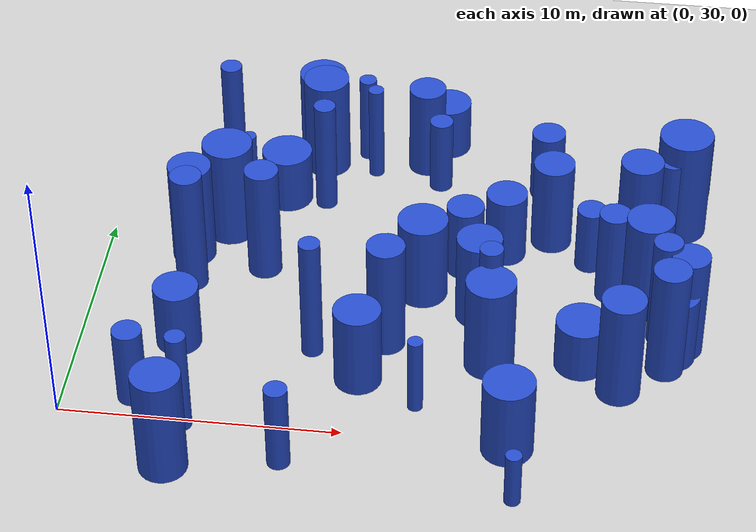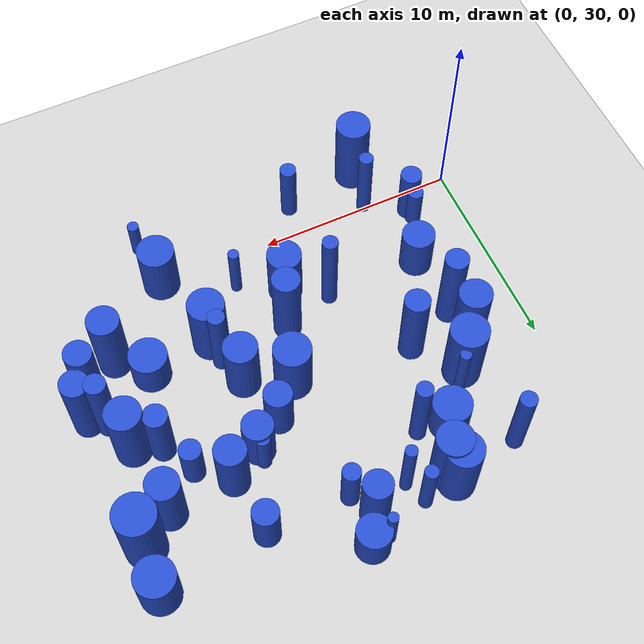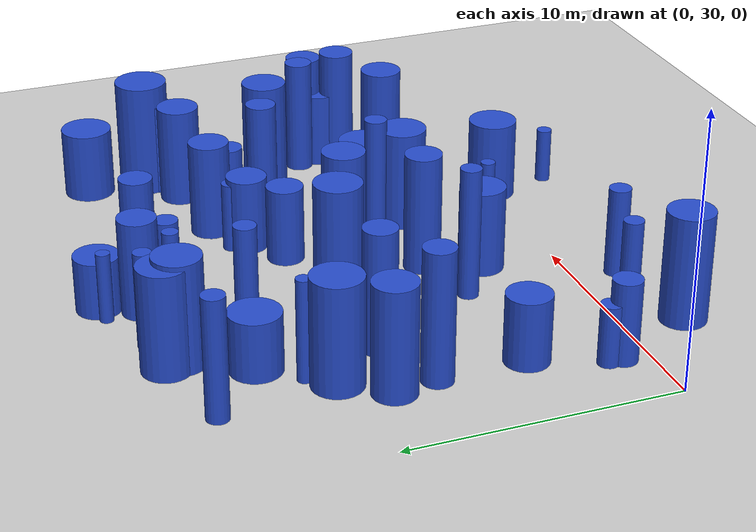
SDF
<sdf version="1.6">
 <world name="default">
  <model name="ground_plane">
   <static>1</static>
   <link name="link">
    <collision name="collision">
     <geometry><plane><normal>0 0 1</normal><size>100 100</size></plane></geometry>
     <surface><friction><ode><mu>100</mu><mu2>50</mu2></ode></friction></surface>
    </collision>
    <visual name="visual">
     <cast_shadows>0</cast_shadows>
     <geometry><plane><normal>0 0 1</normal><size>100 100</size></plane></geometry>
     <material>
      <script><uri>file://media/materials/scripts/gazebo.material</uri><name>Gazebo/Grey</name></script>
     </material>
    </visual>
   </link>
  </model>
  <model name="3">
   <static>0</static>
   <link name="link">
    <inertial>
     <mass>2</mass>
     <inertia><ixx>1.27106</ixx><ixy>0</ixy><ixz>0</ixz><iyy>1.27106</iyy><iyz>0</iyz><izz>0.895913</izz></inertia>
    </inertial>
    <collision name="collision">
     <geometry><cylinder><length>2.2223</length><radius>0.946527</radius></cylinder></geometry>
     <surface><contact><collide_without_contact>1</collide_without_contact></contact></surface>
    </collision>
    <visual name="visual">
     <geometry><cylinder><length>2.2223</length><radius>0.946527</radius></cylinder></geometry>
     <material>
      <script><uri>file://media/materials/scripts/gazebo.material</uri><name>Gazebo/Blue</name></script>
     </material>
    </visual>
    <gravity>0</gravity>
   </link>
   <pose>6.2225 42.677 1.11115 0 -0 0</pose>
  </model>
  <model name="13">
   <static>0</static>
   <link name="link">
    <inertial>
     <mass>2</mass>
     <inertia><ixx>1.65318</ixx><ixy>0</ixy><ixz>0</ixz><iyy>1.65318</iyy><iyz>0</iyz><izz>0.578017</izz></inertia>
    </inertial>
    <collision name="collision">
     <geometry><cylinder><length>2.86095</length><radius>0.760275</radius></cylinder></geometry>
     <surface><contact><collide_without_contact>1</collide_without_contact></contact></surface>
    </collision>
    <visual name="visual">
     <geometry><cylinder><length>2.86095</length><radius>0.760275</radius></cylinder></geometry>
     <material>
      <script><uri>file://media/materials/scripts/gazebo.material</uri><name>Gazebo/Blue</name></script>
     </material>
    </visual>
    <gravity>0</gravity>
   </link>
   <pose>14.8082 40.254 1.43047 0 -0 0</pose>
  </model>
  <model name="15">
   <static>0</static>
   <link name="link">
    <inertial>
     <mass>2</mass>
     <inertia><ixx>2.02878</ixx><ixy>0</ixy><ixz>0</ixz><iyy>2.02878</iyy><iyz>0</iyz><izz>0.837732</izz></inertia>
    </inertial>
    <collision name="collision">
     <geometry><cylinder><length>3.10797</length><radius>0.915277</radius></cylinder></geometry>
     <surface><contact><collide_without_contact>1</collide_without_contact></contact></surface>
    </collision>
    <visual name="visual">
     <geometry><cylinder><length>3.10797</length><radius>0.915277</radius></cylinder></geometry>
     <material>
      <script><uri>file://media/materials/scripts/gazebo.material</uri><name>Gazebo/Blue</name></script>
     </material>
    </visual>
    <gravity>0</gravity>
   </link>
   <pose>15.7285 29.9287 1.55399 0 -0 0</pose>
  </model>
  <model name="21">
   <static>0</static>
   <link name="link">
    <inertial>
     <mass>2</mass>
     <inertia>
      <ixx>0.942504</ixx>
      <ixy>0</ixy>
      <ixz>0</ixz>
      <iyy>0.942504</iyy>
      <iyz>0</iyz>
      <izz>0.157121</izz>
     </inertia>
    </inertial>
    <collision name="collision">
     <geometry><cylinder><length>2.27677</length><radius>0.396385</radius></cylinder></geometry>
     <surface><contact><collide_without_contact>1</collide_without_contact></contact></surface>
    </collision>
    <visual name="visual">
     <geometry><cylinder><length>2.27677</length><radius>0.396385</radius></cylinder></geometry>
     <material>
      <script><uri>file://media/materials/scripts/gazebo.material</uri><name>Gazebo/Blue</name></script>
     </material>
    </visual>
    <gravity>0</gravity>
   </link>
   <pose>2.46046 31.5423 1.13838 0 -0 0</pose>
  </model>
  <model name="29">
   <static>0</static>
   <link name="link">
    <inertial>
     <mass>2</mass>
     <inertia><ixx>1.13627</ixx><ixy>0</ixy><ixz>0</ixz><iyy>1.13627</iyy><iyz>0</iyz><izz>0.890575</izz></inertia>
    </inertial>
    <collision name="collision">
     <geometry><cylinder><length>2.03615</length><radius>0.943703</radius></cylinder></geometry>
     <surface><contact><collide_without_contact>1</collide_without_contact></contact></surface>
    </collision>
    <visual name="visual">
     <geometry><cylinder><length>2.03615</length><radius>0.943703</radius></cylinder></geometry>
     <material>
      <script><uri>file://media/materials/scripts/gazebo.material</uri><name>Gazebo/Blue</name></script>
     </material>
    </visual>
    <gravity>0</gravity>
   </link>
   <pose>17.9595 34.4953 1.01807 0 -0 0</pose>
  </model>
  <model name="33">
   <static>0</static>
   <link name="link">
    <inertial>
     <mass>2</mass>
     <inertia><ixx>3.34107</ixx><ixy>0</ixy><ixz>0</ixz><iyy>3.34107</iyy><iyz>0</iyz><izz>0.741521</izz></inertia>
    </inertial>
    <collision name="collision">
     <geometry><cylinder><length>4.22159</length><radius>0.861116</radius></cylinder></geometry>
     <surface><contact><collide_without_contact>1</collide_without_contact></contact></surface>
    </collision>
    <visual name="visual">
     <geometry><cylinder><length>4.22159</length><radius>0.861116</radius></cylinder></geometry>
     <material>
      <script><uri>file://media/materials/scripts/gazebo.material</uri><name>Gazebo/Blue</name></script>
     </material>
    </visual>
    <gravity>0</gravity>
   </link>
   <pose>4.2013 27.7585 2.1108 0 -0 0</pose>
  </model>
  <model name="34">
   <static>0</static>
   <link name="link">
    <inertial>
     <mass>2</mass>
     <inertia><ixx>1.44194</ixx><ixy>0</ixy><ixz>0</ixz><iyy>1.44194</iyy><iyz>0</iyz><izz>0.671354</izz></inertia>
    </inertial>
    <collision name="collision">
     <geometry><cylinder><length>2.57635</length><radius>0.819362</radius></cylinder></geometry>
     <surface><contact><collide_without_contact>1</collide_without_contact></contact></surface>
    </collision>
    <visual name="visual">
     <geometry><cylinder><length>2.57635</length><radius>0.819362</radius></cylinder></geometry>
     <material>
      <script><uri>file://media/materials/scripts/gazebo.material</uri><name>Gazebo/Blue</name></script>
     </material>
    </visual>
    <gravity>0</gravity>
   </link>
   <pose>3.57515 34.0262 1.28817 0 -0 0</pose>
  </model>
  <model name="49">
   <static>0</static>
   <link name="link">
    <inertial>
     <mass>2</mass>
     <inertia><ixx>2.53938</ixx><ixy>0</ixy><ixz>0</ixz><iyy>2.53938</iyy><iyz>0</iyz><izz>0.580052</izz></inertia>
    </inertial>
    <collision name="collision">
     <geometry><cylinder><length>3.67371</length><radius>0.761611</radius></cylinder></geometry>
     <surface><contact><collide_without_contact>1</collide_without_contact></contact></surface>
    </collision>
    <visual name="visual">
     <geometry><cylinder><length>3.67371</length><radius>0.761611</radius></cylinder></geometry>
     <material>
      <script><uri>file://media/materials/scripts/gazebo.material</uri><name>Gazebo/Blue</name></script>
     </material>
    </visual>
    <gravity>0</gravity>
   </link>
   <pose>16.4595 41.1875 1.83685 0 -0 0</pose>
  </model>
  <model name="52">
   <static>0</static>
   <link name="link">
    <inertial>
     <mass>2</mass>
     <inertia><ixx>3.32112</ixx><ixy>0</ixy><ixz>0</ixz><iyy>3.32112</iyy><iyz>0</iyz><izz>0.180098</izz></inertia>
    </inertial>
    <collision name="collision">
     <geometry><cylinder><length>4.40301</length><radius>0.42438</radius></cylinder></geometry>
     <surface><contact><collide_without_contact>1</collide_without_contact></contact></surface>
    </collision>
    <visual name="visual">
     <geometry><cylinder><length>4.40301</length><radius>0.42438</radius></cylinder></geometry>
     <material>
      <script><uri>file://media/materials/scripts/gazebo.material</uri><name>Gazebo/Blue</name></script>
     </material>
    </visual>
    <gravity>0</gravity>
   </link>
   <pose>14.6406 35.2188 2.2015 0 -0 0</pose>
  </model>
  <model name="63">
   <static>0</static>
   <link name="link">
    <inertial>
     <mass>2</mass>
     <inertia><ixx>3.63749</ixx><ixy>0</ixy><ixz>0</ixz><iyy>3.63749</iyy><iyz>0</iyz><izz>0.165125</izz></inertia>
    </inertial>
    <collision name="collision">
     <geometry><cylinder><length>4.61839</length><radius>0.406356</radius></cylinder></geometry>
     <surface><contact><collide_without_contact>1</collide_without_contact></contact></surface>
    </collision>
    <visual name="visual">
     <geometry><cylinder><length>4.61839</length><radius>0.406356</radius></cylinder></geometry>
     <material>
      <script><uri>file://media/materials/scripts/gazebo.material</uri><name>Gazebo/Blue</name></script>
     </material>
    </visual>
    <gravity>0</gravity>
   </link>
   <pose>7.74254 42.4668 2.3092 0 -0 0</pose>
  </model>
  <model name="65">
   <static>0</static>
   <link name="link">
    <inertial>
     <mass>2</mass>
     <inertia><ixx>2.6533</ixx><ixy>0</ixy><ixz>0</ixz><iyy>2.6533</iyy><iyz>0</iyz><izz>0.0866099</izz></inertia>
    </inertial>
    <collision name="collision">
     <geometry><cylinder><length>3.95727</length><radius>0.294296</radius></cylinder></geometry>
     <surface><contact><collide_without_contact>1</collide_without_contact></contact></surface>
    </collision>
    <visual name="visual">
     <geometry><cylinder><length>3.95727</length><radius>0.294296</radius></cylinder></geometry>
     <material>
      <script><uri>file://media/materials/scripts/gazebo.material</uri><name>Gazebo/Blue</name></script>
     </material>
    </visual>
    <gravity>0</gravity>
   </link>
   <pose>9.41371 44.5715 1.97863 0 -0 0</pose>
  </model>
  <model name="73">
   <static>0</static>
   <link name="link">
    <inertial>
     <mass>2</mass>
     <inertia><ixx>3.46252</ixx><ixy>0</ixy><ixz>0</ixz><iyy>3.46252</iyy><iyz>0</iyz><izz>0.167868</izz></inertia>
    </inertial>
    <collision name="collision">
     <geometry><cylinder><length>4.50239</length><radius>0.409717</radius></cylinder></geometry>
     <surface><contact><collide_without_contact>1</collide_without_contact></contact></surface>
    </collision>
    <visual name="visual">
     <geometry><cylinder><length>4.50239</length><radius>0.409717</radius></cylinder></geometry>
     <material>
      <script><uri>file://media/materials/scripts/gazebo.material</uri><name>Gazebo/Blue</name></script>
     </material>
    </visual>
    <gravity>0</gravity>
   </link>
   <pose>3.82424 44.7196 2.25119 0 -0 0</pose>
  </model>
  <model name="81">
   <static>0</static>
   <link name="link">
    <inertial>
     <mass>2</mass>
     <inertia><ixx>3.20515</ixx><ixy>0</ixy><ixz>0</ixz><iyy>3.20515</iyy><iyz>0</iyz><izz>0.736814</izz></inertia>
    </inertial>
    <collision name="collision">
     <geometry><cylinder><length>4.12559</length><radius>0.858379</radius></cylinder></geometry>
     <surface><contact><collide_without_contact>1</collide_without_contact></contact></surface>
    </collision>
    <visual name="visual">
     <geometry><cylinder><length>4.12559</length><radius>0.858379</radius></cylinder></geometry>
     <material>
      <script><uri>file://media/materials/scripts/gazebo.material</uri><name>Gazebo/Blue</name></script>
     </material>
    </visual>
    <gravity>0</gravity>
   </link>
   <pose>20.1003 37.8413 2.06279 0 -0 0</pose>
  </model>
  <model name="99">
   <static>0</static>
   <link name="link">
    <inertial>
     <mass>2</mass>
     <inertia><ixx>2.01084</ixx><ixy>0</ixy><ixz>0</ixz><iyy>2.01084</iyy><iyz>0</iyz><izz>0.169037</izz></inertia>
    </inertial>
    <collision name="collision">
     <geometry><cylinder><length>3.39969</length><radius>0.411142</radius></cylinder></geometry>
     <surface><contact><collide_without_contact>1</collide_without_contact></contact></surface>
    </collision>
    <visual name="visual">
     <geometry><cylinder><length>3.39969</length><radius>0.411142</radius></cylinder></geometry>
     <material>
      <script><uri>file://media/materials/scripts/gazebo.material</uri><name>Gazebo/Blue</name></script>
     </material>
    </visual>
    <gravity>0</gravity>
   </link>
   <pose>8.06943 28.385 1.69985 0 -0 0</pose>
  </model>
  <model name="101">
   <static>0</static>
   <link name="link">
    <inertial>
     <mass>2</mass>
     <inertia><ixx>2.85249</ixx><ixy>0</ixy><ixz>0</ixz><iyy>2.85249</iyy><iyz>0</iyz><izz>0.131371</izz></inertia>
    </inertial>
    <collision name="collision">
     <geometry><cylinder><length>4.08911</length><radius>0.362452</radius></cylinder></geometry>
     <surface><contact><collide_without_contact>1</collide_without_contact></contact></surface>
    </collision>
    <visual name="visual">
     <geometry><cylinder><length>4.08911</length><radius>0.362452</radius></cylinder></geometry>
     <material>
      <script><uri>file://media/materials/scripts/gazebo.material</uri><name>Gazebo/Blue</name></script>
     </material>
    </visual>
    <gravity>0</gravity>
   </link>
   <pose>4.46368 29.8106 2.04456 0 -0 0</pose>
  </model>
  <model name="103">
   <static>0</static>
   <link name="link">
    <inertial>
     <mass>2</mass>
     <inertia><ixx>1.67193</ixx><ixy>0</ixy><ixz>0</ixz><iyy>1.67193</iyy><iyz>0</iyz><izz>0.920377</izz></inertia>
    </inertial>
    <collision name="collision">
     <geometry><cylinder><length>2.69637</length><radius>0.959363</radius></cylinder></geometry>
     <surface><contact><collide_without_contact>1</collide_without_contact></contact></surface>
    </collision>
    <visual name="visual">
     <geometry><cylinder><length>2.69637</length><radius>0.959363</radius></cylinder></geometry>
     <material>
      <script><uri>file://media/materials/scripts/gazebo.material</uri><name>Gazebo/Blue</name></script>
     </material>
    </visual>
    <gravity>0</gravity>
   </link>
   <pose>21.392 44.72 1.34819 0 -0 0</pose>
  </model>
  <model name="112">
   <static>0</static>
   <link name="link">
    <inertial>
     <mass>2</mass>
     <inertia><ixx>2.52955</ixx><ixy>0</ixy><ixz>0</ixz><iyy>2.52955</iyy><iyz>0</iyz><izz>0.495649</izz></inertia>
    </inertial>
    <collision name="collision">
     <geometry><cylinder><length>3.70005</length><radius>0.704024</radius></cylinder></geometry>
     <surface><contact><collide_without_contact>1</collide_without_contact></contact></surface>
    </collision>
    <visual name="visual">
     <geometry><cylinder><length>3.70005</length><radius>0.704024</radius></cylinder></geometry>
     <material>
      <script><uri>file://media/materials/scripts/gazebo.material</uri><name>Gazebo/Blue</name></script>
     </material>
    </visual>
    <gravity>0</gravity>
   </link>
   <pose>11.3212 45.2536 1.85003 0 -0 0</pose>
  </model>
  <model name="115">
   <static>0</static>
   <link name="link">
    <inertial>
     <mass>2</mass>
     <inertia>
      <ixx>2.45331</ixx>
      <ixy>0</ixy>
      <ixz>0</ixz>
      <iyy>2.45331</iyy>
      <iyz>0</iyz>
      <izz>0.0722573</izz>
     </inertia>
    </inertial>
    <collision name="collision">
     <geometry><cylinder><length>3.8083</length><radius>0.268807</radius></cylinder></geometry>
     <surface><contact><collide_without_contact>1</collide_without_contact></contact></surface>
    </collision>
    <visual name="visual">
     <geometry><cylinder><length>3.8083</length><radius>0.268807</radius></cylinder></geometry>
     <material>
      <script><uri>file://media/materials/scripts/gazebo.material</uri><name>Gazebo/Blue</name></script>
     </material>
    </visual>
    <gravity>0</gravity>
   </link>
   <pose>5.03865 41.3757 1.90415 0 -0 0</pose>
  </model>
  <model name="126">
   <static>0</static>
   <link name="link">
    <inertial>
     <mass>2</mass>
     <inertia><ixx>3.65056</ixx><ixy>0</ixy><ixz>0</ixz><iyy>3.65056</iyy><iyz>0</iyz><izz>0.476539</izz></inertia>
    </inertial>
    <collision name="collision">
     <geometry><cylinder><length>4.52479</length><radius>0.690318</radius></cylinder></geometry>
     <surface><contact><collide_without_contact>1</collide_without_contact></contact></surface>
    </collision>
    <visual name="visual">
     <geometry><cylinder><length>4.52479</length><radius>0.690318</radius></cylinder></geometry>
     <material>
      <script><uri>file://media/materials/scripts/gazebo.material</uri><name>Gazebo/Blue</name></script>
     </material>
    </visual>
    <gravity>0</gravity>
   </link>
   <pose>10.9775 34.793 2.26239 0 -0 0</pose>
  </model>
  <model name="131">
   <static>0</static>
   <link name="link">
    <inertial>
     <mass>2</mass>
     <inertia>
      <ixx>0.803513</ixx>
      <ixy>0</ixy>
      <ixz>0</ixz>
      <iyy>0.803513</iyy>
      <iyz>0</iyz>
      <izz>0.0823005</izz>
     </inertia>
    </inertial>
    <collision name="collision">
     <geometry><cylinder><length>2.13873</length><radius>0.286881</radius></cylinder></geometry>
     <surface><contact><collide_without_contact>1</collide_without_contact></contact></surface>
    </collision>
    <visual name="visual">
     <geometry><cylinder><length>2.13873</length><radius>0.286881</radius></cylinder></geometry>
     <material>
      <script><uri>file://media/materials/scripts/gazebo.material</uri><name>Gazebo/Blue</name></script>
     </material>
    </visual>
    <gravity>0</gravity>
   </link>
   <pose>16.106 27.4898 1.06937 0 -0 0</pose>
  </model>
  <model name="134">
   <static>0</static>
   <link name="link">
    <inertial>
     <mass>2</mass>
     <inertia><ixx>1.28456</ixx><ixy>0</ixy><ixz>0</ixz><iyy>1.28456</iyy><iyz>0</iyz><izz>0.284508</izz></inertia>
    </inertial>
    <collision name="collision">
     <geometry><cylinder><length>2.61799</length><radius>0.533393</radius></cylinder></geometry>
     <surface><contact><collide_without_contact>1</collide_without_contact></contact></surface>
    </collision>
    <visual name="visual">
     <geometry><cylinder><length>2.61799</length><radius>0.533393</radius></cylinder></geometry>
     <material>
      <script><uri>file://media/materials/scripts/gazebo.material</uri><name>Gazebo/Blue</name></script>
     </material>
    </visual>
    <gravity>0</gravity>
   </link>
   <pose>17.9562 39.9915 1.30899 0 -0 0</pose>
  </model>
  <model name="137">
   <static>0</static>
   <link name="link">
    <inertial>
     <mass>2</mass>
     <inertia><ixx>3.36348</ixx><ixy>0</ixy><ixz>0</ixz><iyy>3.36348</iyy><iyz>0</iyz><izz>0.618252</izz></inertia>
    </inertial>
    <collision name="collision">
     <geometry><cylinder><length>4.2809</length><radius>0.78629</radius></cylinder></geometry>
     <surface><contact><collide_without_contact>1</collide_without_contact></contact></surface>
    </collision>
    <visual name="visual">
     <geometry><cylinder><length>4.2809</length><radius>0.78629</radius></cylinder></geometry>
     <material>
      <script><uri>file://media/materials/scripts/gazebo.material</uri><name>Gazebo/Blue</name></script>
     </material>
    </visual>
    <gravity>0</gravity>
   </link>
   <pose>19.3556 33.2046 2.14045 0 -0 0</pose>
  </model>
  <model name="139">
   <static>0</static>
   <link name="link">
    <inertial>
     <mass>2</mass>
     <inertia><ixx>3.22486</ixx><ixy>0</ixy><ixz>0</ixz><iyy>3.22486</iyy><iyz>0</iyz><izz>0.874221</izz></inertia>
    </inertial>
    <collision name="collision">
     <geometry><cylinder><length>4.0898</length><radius>0.934998</radius></cylinder></geometry>
     <surface><contact><collide_without_contact>1</collide_without_contact></contact></surface>
    </collision>
    <visual name="visual">
     <geometry><cylinder><length>4.0898</length><radius>0.934998</radius></cylinder></geometry>
     <material>
      <script><uri>file://media/materials/scripts/gazebo.material</uri><name>Gazebo/Blue</name></script>
     </material>
    </visual>
    <gravity>0</gravity>
   </link>
   <pose>4.3738 40.4624 2.0449 0 -0 0</pose>
  </model>
  <model name="144">
   <static>0</static>
   <link name="link">
    <inertial>
     <mass>2</mass>
     <inertia><ixx>2.12755</ixx><ixy>0</ixy><ixz>0</ixz><iyy>2.12755</iyy><iyz>0</iyz><izz>0.723564</izz></inertia>
    </inertial>
    <collision name="collision">
     <geometry><cylinder><length>3.25494</length><radius>0.850626</radius></cylinder></geometry>
     <surface><contact><collide_without_contact>1</collide_without_contact></contact></surface>
    </collision>
    <visual name="visual">
     <geometry><cylinder><length>3.25494</length><radius>0.850626</radius></cylinder></geometry>
     <material>
      <script><uri>file://media/materials/scripts/gazebo.material</uri><name>Gazebo/Blue</name></script>
     </material>
    </visual>
    <gravity>0</gravity>
   </link>
   <pose>10.2162 32.7833 1.62747 0 -0 0</pose>
  </model>
  <model name="147">
   <static>0</static>
   <link name="link">
    <inertial>
     <mass>2</mass>
     <inertia><ixx>3.49009</ixx><ixy>0</ixy><ixz>0</ixz><iyy>3.49009</iyy><iyz>0</iyz><izz>0.274124</izz></inertia>
    </inertial>
    <collision name="collision">
     <geometry><cylinder><length>4.48533</length><radius>0.523568</radius></cylinder></geometry>
     <surface><contact><collide_without_contact>1</collide_without_contact></contact></surface>
    </collision>
    <visual name="visual">
     <geometry><cylinder><length>4.48533</length><radius>0.523568</radius></cylinder></geometry>
     <material>
      <script><uri>file://media/materials/scripts/gazebo.material</uri><name>Gazebo/Blue</name></script>
     </material>
    </visual>
    <gravity>0</gravity>
   </link>
   <pose>20.7487 36.1869 2.24266 0 -0 0</pose>
  </model>
  <model name="148">
   <static>0</static>
   <link name="link">
    <inertial>
     <mass>2</mass>
     <inertia><ixx>2.40063</ixx><ixy>0</ixy><ixz>0</ixz><iyy>2.40063</iyy><iyz>0</iyz><izz>0.848115</izz></inertia>
    </inertial>
    <collision name="collision">
     <geometry><cylinder><length>3.44375</length><radius>0.920932</radius></cylinder></geometry>
     <surface><contact><collide_without_contact>1</collide_without_contact></contact></surface>
    </collision>
    <visual name="visual">
     <geometry><cylinder><length>3.44375</length><radius>0.920932</radius></cylinder></geometry>
     <material>
      <script><uri>file://media/materials/scripts/gazebo.material</uri><name>Gazebo/Blue</name></script>
     </material>
    </visual>
    <gravity>0</gravity>
   </link>
   <pose>11.9658 37.6897 1.72188 0 -0 0</pose>
  </model>
  <model name="150">
   <static>0</static>
   <link name="link">
    <inertial>
     <mass>2</mass>
     <inertia><ixx>2.57688</ixx><ixy>0</ixy><ixz>0</ixz><iyy>2.57688</iyy><iyz>0</iyz><izz>0.341913</izz></inertia>
    </inertial>
    <collision name="collision">
     <geometry><cylinder><length>3.79941</length><radius>0.584733</radius></cylinder></geometry>
     <surface><contact><collide_without_contact>1</collide_without_contact></contact></surface>
    </collision>
    <visual name="visual">
     <geometry><cylinder><length>3.79941</length><radius>0.584733</radius></cylinder></geometry>
     <material>
      <script><uri>file://media/materials/scripts/gazebo.material</uri><name>Gazebo/Blue</name></script>
     </material>
    </visual>
    <gravity>0</gravity>
   </link>
   <pose>18.838 38.3785 1.89971 0 -0 0</pose>
  </model>
  <model name="159">
   <static>0</static>
   <link name="link">
    <inertial>
     <mass>2</mass>
     <inertia><ixx>1.5537</ixx><ixy>0</ixy><ixz>0</ixz><iyy>1.5537</iyy><iyz>0</iyz><izz>0.403807</izz></inertia>
    </inertial>
    <collision name="collision">
     <geometry><cylinder><length>2.84794</length><radius>0.635458</radius></cylinder></geometry>
     <surface><contact><collide_without_contact>1</collide_without_contact></contact></surface>
    </collision>
    <visual name="visual">
     <geometry><cylinder><length>2.84794</length><radius>0.635458</radius></cylinder></geometry>
     <material>
      <script><uri>file://media/materials/scripts/gazebo.material</uri><name>Gazebo/Blue</name></script>
     </material>
    </visual>
    <gravity>0</gravity>
   </link>
   <pose>16.0865 44.1131 1.42397 0 -0 0</pose>
  </model>
  <model name="175">
   <static>0</static>
   <link name="link">
    <inertial>
     <mass>2</mass>
     <inertia>
      <ixx>1.59317</ixx>
      <ixy>0</ixy>
      <ixz>0</ixz>
      <iyy>1.59317</iyy>
      <iyz>0</iyz>
      <izz>0.0750365</izz>
     </inertia>
    </inertial>
    <collision name="collision">
     <geometry><cylinder><length>3.05515</length><radius>0.273928</radius></cylinder></geometry>
     <surface><contact><collide_without_contact>1</collide_without_contact></contact></surface>
    </collision>
    <visual name="visual">
     <geometry><cylinder><length>3.05515</length><radius>0.273928</radius></cylinder></geometry>
     <material>
      <script><uri>file://media/materials/scripts/gazebo.material</uri><name>Gazebo/Blue</name></script>
     </material>
    </visual>
    <gravity>0</gravity>
   </link>
   <pose>12.3757 31.6197 1.52757 0 -0 0</pose>
  </model>
  <model name="178">
   <static>0</static>
   <link name="link">
    <inertial>
     <mass>2</mass>
     <inertia><ixx>1.10158</ixx><ixy>0</ixy><ixz>0</ixz><iyy>1.10158</iyy><iyz>0</iyz><izz>0.694112</izz></inertia>
    </inertial>
    <collision name="collision">
     <geometry><cylinder><length>2.12771</length><radius>0.833134</radius></cylinder></geometry>
     <surface><contact><collide_without_contact>1</collide_without_contact></contact></surface>
    </collision>
    <visual name="visual">
     <geometry><cylinder><length>2.12771</length><radius>0.833134</radius></cylinder></geometry>
     <material>
      <script><uri>file://media/materials/scripts/gazebo.material</uri><name>Gazebo/Blue</name></script>
     </material>
    </visual>
    <gravity>0</gravity>
   </link>
   <pose>12.0633 46.5837 1.06386 0 -0 0</pose>
  </model>
  <model name="179">
   <static>0</static>
   <link name="link">
    <inertial>
     <mass>2</mass>
     <inertia><ixx>4.21717</ixx><ixy>0</ixy><ixz>0</ixz><iyy>4.21717</iyy><iyz>0</iyz><izz>0.150288</izz></inertia>
    </inertial>
    <collision name="collision">
     <geometry><cylinder><length>4.98519</length><radius>0.387669</radius></cylinder></geometry>
     <surface><contact><collide_without_contact>1</collide_without_contact></contact></surface>
    </collision>
    <visual name="visual">
     <geometry><cylinder><length>4.98519</length><radius>0.387669</radius></cylinder></geometry>
     <material>
      <script><uri>file://media/materials/scripts/gazebo.material</uri><name>Gazebo/Blue</name></script>
     </material>
    </visual>
    <gravity>0</gravity>
   </link>
   <pose>8.40302 34.0732 2.4926 0 -0 0</pose>
  </model>
  <model name="183">
   <static>0</static>
   <link name="link">
    <inertial>
     <mass>2</mass>
     <inertia><ixx>2.49307</ixx><ixy>0</ixy><ixz>0</ixz><iyy>2.49307</iyy><iyz>0</iyz><izz>0.692048</izz></inertia>
    </inertial>
    <collision name="collision">
     <geometry><cylinder><length>3.58919</length><radius>0.831894</radius></cylinder></geometry>
     <surface><contact><collide_without_contact>1</collide_without_contact></contact></surface>
    </collision>
    <visual name="visual">
     <geometry><cylinder><length>3.58919</length><radius>0.831894</radius></cylinder></geometry>
     <material>
      <script><uri>file://media/materials/scripts/gazebo.material</uri><name>Gazebo/Blue</name></script>
     </material>
    </visual>
    <gravity>0</gravity>
   </link>
   <pose>14.1066 36.6947 1.79459 0 -0 0</pose>
  </model>
  <model name="185">
   <static>0</static>
   <link name="link">
    <inertial>
     <mass>2</mass>
     <inertia><ixx>4.28066</ixx><ixy>0</ixy><ixz>0</ixz><iyy>4.28066</iyy><iyz>0</iyz><izz>0.335671</izz></inertia>
    </inertial>
    <collision name="collision">
     <geometry><cylinder><length>4.96759</length><radius>0.579371</radius></cylinder></geometry>
     <surface><contact><collide_without_contact>1</collide_without_contact></contact></surface>
    </collision>
    <visual name="visual">
     <geometry><cylinder><length>4.96759</length><radius>0.579371</radius></cylinder></geometry>
     <material>
      <script><uri>file://media/materials/scripts/gazebo.material</uri><name>Gazebo/Blue</name></script>
     </material>
    </visual>
    <gravity>0</gravity>
   </link>
   <pose>3.46128 37.3119 2.4838 0 -0 0</pose>
  </model>
  <model name="195">
   <static>0</static>
   <link name="link">
    <inertial>
     <mass>2</mass>
     <inertia><ixx>2.86775</ixx><ixy>0</ixy><ixz>0</ixz><iyy>2.86775</iyy><iyz>0</iyz><izz>0.80804</izz></inertia>
    </inertial>
    <collision name="collision">
     <geometry><cylinder><length>3.84478</length><radius>0.898911</radius></cylinder></geometry>
     <surface><contact><collide_without_contact>1</collide_without_contact></contact></surface>
    </collision>
    <visual name="visual">
     <geometry><cylinder><length>3.84478</length><radius>0.898911</radius></cylinder></geometry>
     <material>
      <script><uri>file://media/materials/scripts/gazebo.material</uri><name>Gazebo/Blue</name></script>
     </material>
    </visual>
    <gravity>0</gravity>
   </link>
   <pose>14.7374 34.1048 1.92239 0 -0 0</pose>
  </model>
  <model name="202">
   <static>0</static>
   <link name="link">
    <inertial>
     <mass>2</mass>
     <inertia><ixx>2.22614</ixx><ixy>0</ixy><ixz>0</ixz><iyy>2.22614</iyy><iyz>0</iyz><izz>0.110093</izz></inertia>
    </inertial>
    <collision name="collision">
     <geometry><cylinder><length>3.60923</length><radius>0.331803</radius></cylinder></geometry>
     <surface><contact><collide_without_contact>1</collide_without_contact></contact></surface>
    </collision>
    <visual name="visual">
     <geometry><cylinder><length>3.60923</length><radius>0.331803</radius></cylinder></geometry>
     <material>
      <script><uri>file://media/materials/scripts/gazebo.material</uri><name>Gazebo/Blue</name></script>
     </material>
    </visual>
    <gravity>0</gravity>
   </link>
   <pose>8.9616 45.6701 1.80462 0 -0 0</pose>
  </model>
  <model name="205">
   <static>0</static>
   <link name="link">
    <inertial>
     <mass>2</mass>
     <inertia><ixx>1.67336</ixx><ixy>0</ixy><ixz>0</ixz><iyy>1.67336</iyy><iyz>0</iyz><izz>0.194667</izz></inertia>
    </inertial>
    <collision name="collision">
     <geometry><cylinder><length>3.07508</length><radius>0.441211</radius></cylinder></geometry>
     <surface><contact><collide_without_contact>1</collide_without_contact></contact></surface>
    </collision>
    <visual name="visual">
     <geometry><cylinder><length>3.07508</length><radius>0.441211</radius></cylinder></geometry>
     <material>
      <script><uri>file://media/materials/scripts/gazebo.material</uri><name>Gazebo/Blue</name></script>
     </material>
    </visual>
    <gravity>0</gravity>
   </link>
   <pose>11.9862 44.0638 1.53754 0 -0 0</pose>
  </model>
  <model name="208">
   <static>0</static>
   <link name="link">
    <inertial>
     <mass>2</mass>
     <inertia>
      <ixx>1.19227</ixx>
      <ixy>0</ixy>
      <ixz>0</ixz>
      <iyy>1.19227</iyy>
      <iyz>0</iyz>
      <izz>0.0647269</izz>
     </inertia>
    </inertial>
    <collision name="collision">
     <geometry><cylinder><length>2.63807</length><radius>0.254415</radius></cylinder></geometry>
     <surface><contact><collide_without_contact>1</collide_without_contact></contact></surface>
    </collision>
    <visual name="visual">
     <geometry><cylinder><length>2.63807</length><radius>0.254415</radius></cylinder></geometry>
     <material>
      <script><uri>file://media/materials/scripts/gazebo.material</uri><name>Gazebo/Blue</name></script>
     </material>
    </visual>
    <gravity>0</gravity>
   </link>
   <pose>11.167 46.5347 1.31904 0 -0 0</pose>
  </model>
  <model name="209">
   <static>0</static>
   <link name="link">
    <inertial>
     <mass>2</mass>
     <inertia><ixx>3.79171</ixx><ixy>0</ixy><ixz>0</ixz><iyy>3.79171</iyy><iyz>0</iyz><izz>0.451853</izz></inertia>
    </inertial>
    <collision name="collision">
     <geometry><cylinder><length>4.62544</length><radius>0.6722</radius></cylinder></geometry>
     <surface><contact><collide_without_contact>1</collide_without_contact></contact></surface>
    </collision>
    <visual name="visual">
     <geometry><cylinder><length>4.62544</length><radius>0.6722</radius></cylinder></geometry>
     <material>
      <script><uri>file://media/materials/scripts/gazebo.material</uri><name>Gazebo/Blue</name></script>
     </material>
    </visual>
    <gravity>0</gravity>
   </link>
   <pose>20.9317 34.5239 2.31272 0 -0 0</pose>
  </model>
  <model name="214">
   <static>0</static>
   <link name="link">
    <inertial>
     <mass>2</mass>
     <inertia><ixx>2.98357</ixx><ixy>0</ixy><ixz>0</ixz><iyy>2.98357</iyy><iyz>0</iyz><izz>0.80653</izz></inertia>
    </inertial>
    <collision name="collision">
     <geometry><cylinder><length>3.9347</length><radius>0.89807</radius></cylinder></geometry>
     <surface><contact><collide_without_contact>1</collide_without_contact></contact></surface>
    </collision>
    <visual name="visual">
     <geometry><cylinder><length>3.9347</length><radius>0.89807</radius></cylinder></geometry>
     <material>
      <script><uri>file://media/materials/scripts/gazebo.material</uri><name>Gazebo/Blue</name></script>
     </material>
    </visual>
    <gravity>0</gravity>
   </link>
   <pose>7.26378 45.442 1.96735 0 -0 0</pose>
  </model>
  <model name="215">
   <static>0</static>
   <link name="link">
    <inertial>
     <mass>2</mass>
     <inertia><ixx>3.75699</ixx><ixy>0</ixy><ixz>0</ixz><iyy>3.75699</iyy><iyz>0</iyz><izz>0.388409</izz></inertia>
    </inertial>
    <collision name="collision">
     <geometry><cylinder><length>4.6235</length><radius>0.623225</radius></cylinder></geometry>
     <surface><contact><collide_without_contact>1</collide_without_contact></contact></surface>
    </collision>
    <visual name="visual">
     <geometry><cylinder><length>4.6235</length><radius>0.623225</radius></cylinder></geometry>
     <material>
      <script><uri>file://media/materials/scripts/gazebo.material</uri><name>Gazebo/Blue</name></script>
     </material>
    </visual>
    <gravity>0</gravity>
   </link>
   <pose>6.01073 38.3552 2.31175 0 -0 0</pose>
  </model>
  <model name="220">
   <static>0</static>
   <link name="link">
    <inertial>
     <mass>2</mass>
     <inertia><ixx>1.73735</ixx><ixy>0</ixy><ixz>0</ixz><iyy>1.73735</iyy><iyz>0</iyz><izz>0.282029</izz></inertia>
    </inertial>
    <collision name="collision">
     <geometry><cylinder><length>3.09484</length><radius>0.531064</radius></cylinder></geometry>
     <surface><contact><collide_without_contact>1</collide_without_contact></contact></surface>
    </collision>
    <visual name="visual">
     <geometry><cylinder><length>3.09484</length><radius>0.531064</radius></cylinder></geometry>
     <material>
      <script><uri>file://media/materials/scripts/gazebo.material</uri><name>Gazebo/Blue</name></script>
     </material>
    </visual>
    <gravity>0</gravity>
   </link>
   <pose>2.48731 30.9961 1.54742 0 -0 0</pose>
  </model>
  <model name="222">
   <static>0</static>
   <link name="link">
    <inertial>
     <mass>2</mass>
     <inertia><ixx>2.31859</ixx><ixy>0</ixy><ixz>0</ixz><iyy>2.31859</iyy><iyz>0</iyz><izz>0.314104</izz></inertia>
    </inertial>
    <collision name="collision">
     <geometry><cylinder><length>3.60128</length><radius>0.56045</radius></cylinder></geometry>
     <surface><contact><collide_without_contact>1</collide_without_contact></contact></surface>
    </collision>
    <visual name="visual">
     <geometry><cylinder><length>3.60128</length><radius>0.56045</radius></cylinder></geometry>
     <material>
      <script><uri>file://media/materials/scripts/gazebo.material</uri><name>Gazebo/Blue</name></script>
     </material>
    </visual>
    <gravity>0</gravity>
   </link>
   <pose>20.78 41.979 1.80064 0 -0 0</pose>
  </model>
  <model name="225">
   <static>0</static>
   <link name="link">
    <inertial>
     <mass>2</mass>
     <inertia><ixx>3.35615</ixx><ixy>0</ixy><ixz>0</ixz><iyy>3.35615</iyy><iyz>0</iyz><izz>0.473322</izz></inertia>
    </inertial>
    <collision name="collision">
     <geometry><cylinder><length>4.32631</length><radius>0.687984</radius></cylinder></geometry>
     <surface><contact><collide_without_contact>1</collide_without_contact></contact></surface>
    </collision>
    <visual name="visual">
     <geometry><cylinder><length>4.32631</length><radius>0.687984</radius></cylinder></geometry>
     <material>
      <script><uri>file://media/materials/scripts/gazebo.material</uri><name>Gazebo/Blue</name></script>
     </material>
    </visual>
    <gravity>0</gravity>
   </link>
   <pose>21.5656 35.706 2.16315 0 -0 0</pose>
  </model>
  <model name="228">
   <static>0</static>
   <link name="link">
    <inertial>
     <mass>2</mass>
     <inertia><ixx>1.73638</ixx><ixy>0</ixy><ixz>0</ixz><iyy>1.73638</iyy><iyz>0</iyz><izz>0.623905</izz></inertia>
    </inertial>
    <collision name="collision">
     <geometry><cylinder><length>2.92345</length><radius>0.789877</radius></cylinder></geometry>
     <surface><contact><collide_without_contact>1</collide_without_contact></contact></surface>
    </collision>
    <visual name="visual">
     <geometry><cylinder><length>2.92345</length><radius>0.789877</radius></cylinder></geometry>
     <material>
      <script><uri>file://media/materials/scripts/gazebo.material</uri><name>Gazebo/Blue</name></script>
     </material>
    </visual>
    <gravity>0</gravity>
   </link>
   <pose>21.2095 35.2223 1.46173 0 -0 0</pose>
  </model>
  <model name="231">
   <static>0</static>
   <link name="link">
    <inertial>
     <mass>2</mass>
     <inertia><ixx>3.18371</ixx><ixy>0</ixy><ixz>0</ixz><iyy>3.18371</iyy><iyz>0</iyz><izz>0.757303</izz></inertia>
    </inertial>
    <collision name="collision">
     <geometry><cylinder><length>4.10248</length><radius>0.870232</radius></cylinder></geometry>
     <surface><contact><collide_without_contact>1</collide_without_contact></contact></surface>
    </collision>
    <visual name="visual">
     <geometry><cylinder><length>4.10248</length><radius>0.870232</radius></cylinder></geometry>
     <material>
      <script><uri>file://media/materials/scripts/gazebo.material</uri><name>Gazebo/Blue</name></script>
     </material>
    </visual>
    <gravity>0</gravity>
   </link>
   <pose>7.46222 44.8882 2.05124 0 -0 0</pose>
  </model>
  <model name="232">
   <static>0</static>
   <link name="link">
    <inertial>
     <mass>2</mass>
     <inertia><ixx>2.75627</ixx><ixy>0</ixy><ixz>0</ixz><iyy>2.75627</iyy><iyz>0</iyz><izz>0.631356</izz></inertia>
    </inertial>
    <collision name="collision">
     <geometry><cylinder><length>3.82669</length><radius>0.794579</radius></cylinder></geometry>
     <surface><contact><collide_without_contact>1</collide_without_contact></contact></surface>
    </collision>
    <visual name="visual">
     <geometry><cylinder><length>3.82669</length><radius>0.794579</radius></cylinder></geometry>
     <material>
      <script><uri>file://media/materials/scripts/gazebo.material</uri><name>Gazebo/Blue</name></script>
     </material>
    </visual>
    <gravity>0</gravity>
   </link>
   <pose>19.6793 41.4712 1.91335 0 -0 0</pose>
  </model>
  <model name="233">
   <static>0</static>
   <link name="link">
    <inertial>
     <mass>2</mass>
     <inertia><ixx>1.67126</ixx><ixy>0</ixy><ixz>0</ixz><iyy>1.67126</iyy><iyz>0</iyz><izz>0.480397</izz></inertia>
    </inertial>
    <collision name="collision">
     <geometry><cylinder><length>2.93025</length><radius>0.693107</radius></cylinder></geometry>
     <surface><contact><collide_without_contact>1</collide_without_contact></contact></surface>
    </collision>
    <visual name="visual">
     <geometry><cylinder><length>2.93025</length><radius>0.693107</radius></cylinder></geometry>
     <material>
      <script><uri>file://media/materials/scripts/gazebo.material</uri><name>Gazebo/Blue</name></script>
     </material>
    </visual>
    <gravity>0</gravity>
   </link>
   <pose>13.3705 39.2449 1.46513 0 -0 0</pose>
  </model>
  <model name="239">
   <static>0</static>
   <link name="link">
    <inertial>
     <mass>2</mass>
     <inertia><ixx>3.76016</ixx><ixy>0</ixy><ixz>0</ixz><iyy>3.76016</iyy><iyz>0</iyz><izz>0.986349</izz></inertia>
    </inertial>
    <collision name="collision">
     <geometry><cylinder><length>4.42741</length><radius>0.993151</radius></cylinder></geometry>
     <surface><contact><collide_without_contact>1</collide_without_contact></contact></surface>
    </collision>
    <visual name="visual">
     <geometry><cylinder><length>4.42741</length><radius>0.993151</radius></cylinder></geometry>
     <material>
      <script><uri>file://media/materials/scripts/gazebo.material</uri><name>Gazebo/Blue</name></script>
     </material>
    </visual>
    <gravity>0</gravity>
   </link>
   <pose>21.2295 42.4938 2.2137 0 -0 0</pose>
  </model>
  <model name="240">
   <static>0</static>
   <link name="link">
    <inertial>
     <mass>2</mass>
     <inertia><ixx>3.19472</ixx><ixy>0</ixy><ixz>0</ixz><iyy>3.19472</iyy><iyz>0</iyz><izz>0.646059</izz></inertia>
    </inertial>
    <collision name="collision">
     <geometry><cylinder><length>4.15092</length><radius>0.803778</radius></cylinder></geometry>
     <surface><contact><collide_without_contact>1</collide_without_contact></contact></surface>
    </collision>
    <visual name="visual">
     <geometry><cylinder><length>4.15092</length><radius>0.803778</radius></cylinder></geometry>
     <material>
      <script><uri>file://media/materials/scripts/gazebo.material</uri><name>Gazebo/Blue</name></script>
     </material>
    </visual>
    <gravity>0</gravity>
   </link>
   <pose>3.24465 38.9089 2.07546 0 -0 0</pose>
  </model>
  <model name="245">
   <static>0</static>
   <link name="link">
    <inertial>
     <mass>2</mass>
     <inertia><ixx>1.23648</ixx><ixy>0</ixy><ixz>0</ixz><iyy>1.23648</iyy><iyz>0</iyz><izz>0.124269</izz></inertia>
    </inertial>
    <collision name="collision">
     <geometry><cylinder><length>2.65444</length><radius>0.352518</radius></cylinder></geometry>
     <surface><contact><collide_without_contact>1</collide_without_contact></contact></surface>
    </collision>
    <visual name="visual">
     <geometry><cylinder><length>2.65444</length><radius>0.352518</radius></cylinder></geometry>
     <material>
      <script><uri>file://media/materials/scripts/gazebo.material</uri><name>Gazebo/Blue</name></script>
     </material>
    </visual>
    <gravity>0</gravity>
   </link>
   <pose>14.8283 40.848 1.32722 0 -0 0</pose>
  </model>
 </world>
</sdf>
